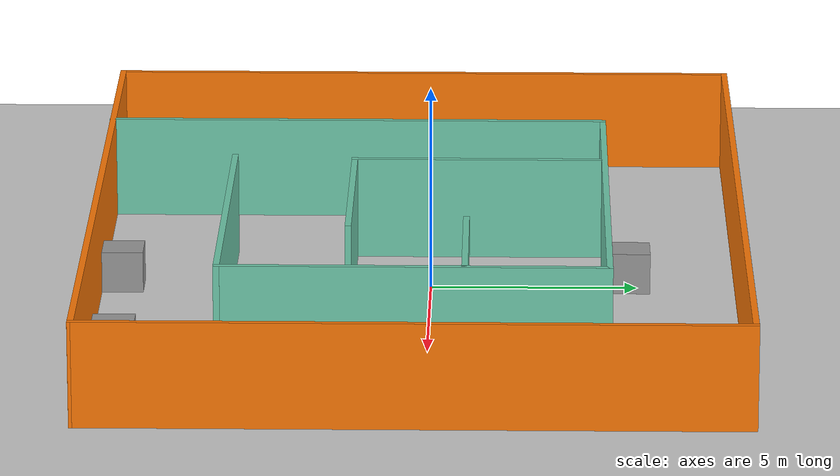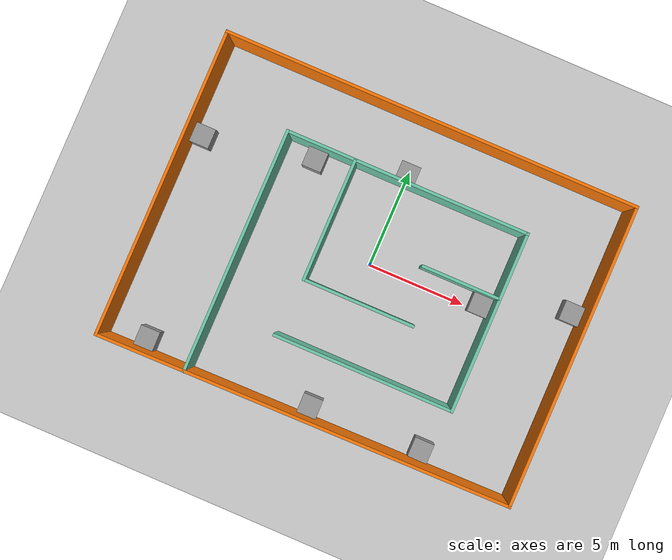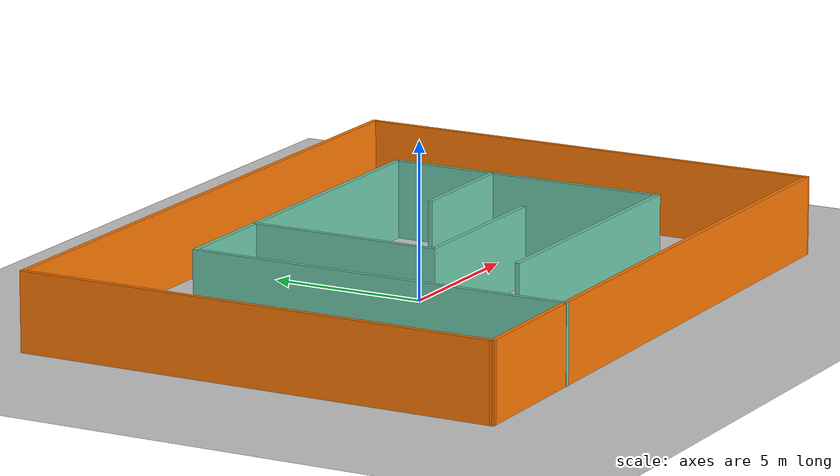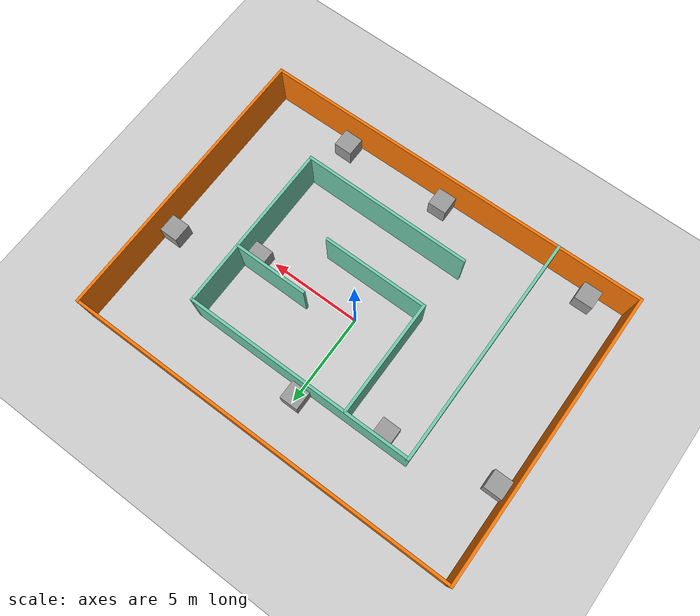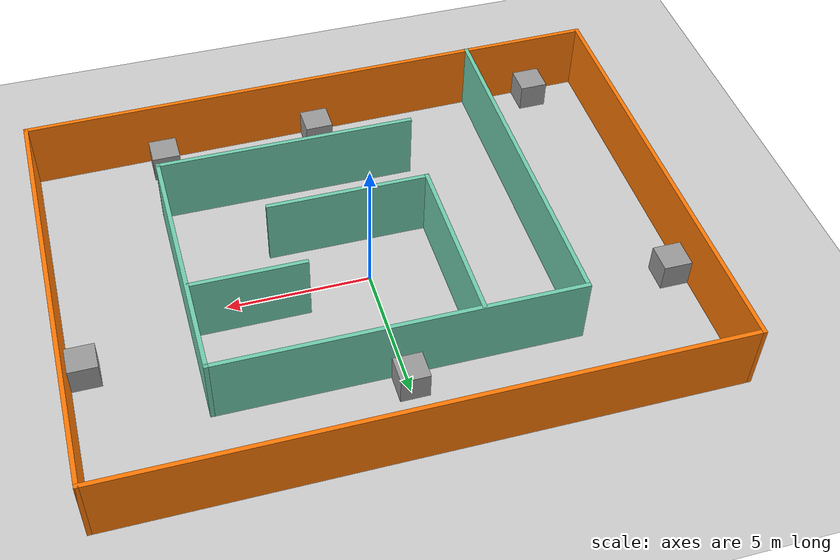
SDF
<sdf version="1.6">
 <world name="default">
  <light name="sun" type="directional">
   <pose>0 0 10 0 -0 0</pose>
   <diffuse>0.8 0.8 0.8 1</diffuse>
   <specular>0.2 0.2 0.2 1</specular>
   <attenuation>
    <range>1000</range>
    <constant>0.9</constant>
    <linear>0.01</linear>
    <quadratic>0.001</quadratic>
   </attenuation>
   <direction>-0.5 0.1 -0.9</direction>
  </light>
  <model name="ground_plane">
   <static>1</static>
   <link name="link">
    <collision name="collision">
     <geometry><plane><normal>0 0 1</normal><size>100 100</size></plane></geometry>
     <surface>
      <contact><collide_bitmask>65535</collide_bitmask></contact>
      <friction><ode><mu>100</mu><mu2>50</mu2></ode></friction>
     </surface>
    </collision>
    <visual name="visual">
     <cast_shadows>0</cast_shadows>
     <geometry><plane><normal>0 0 1</normal><size>100 100</size></plane></geometry>
     <material>
      <script><uri>file://media/materials/scripts/gazebo.material</uri><name>Gazebo/Grey</name></script>
     </material>
    </visual>
   </link>
  </model>
  <gravity>0 0 -9.8</gravity>
  <magnetic_field>6e-06 2.3e-05 -4.2e-05</magnetic_field>
  <atmosphere type="adiabatic"/>
  <physics name="default_physics" default="0" type="ode">
   <max_step_size>0.001</max_step_size>
   <real_time_factor>1</real_time_factor>
   <real_time_update_rate>1000</real_time_update_rate>
  </physics>
  <scene><ambient>0.4 0.4 0.4 1</ambient><background>0.7 0.7 0.7 1</background><shadows>1</shadows></scene>
  <spherical_coordinates>
   <surface_model>EARTH_WGS84</surface_model>
   <latitude_deg>0</latitude_deg>
   <longitude_deg>0</longitude_deg>
   <elevation>0</elevation>
   <heading_deg>0</heading_deg>
  </spherical_coordinates>
  <model name="Test_1">
   <pose>-0.0069 -0.358833 0 0 -0 0</pose>
   <link name="Wall_47">
    <collision name="Wall_47_Collision">
     <geometry><box><size>15.75 0.15 2.5</size></box></geometry>
     <pose>0 0 1.25 0 -0 0</pose>
    </collision>
    <visual name="Wall_47_Visual">
     <pose>0 0 1.25 0 -0 0</pose>
     <geometry><box><size>15.75 0.15 2.5</size></box></geometry>
     <material>
      <script><uri>file://media/materials/scripts/gazebo.material</uri><name>Gazebo/Grey</name></script>
      <ambient>0.996078 0.47451 0.0196078 1</ambient>
     </material>
     <meta><layer>0</layer></meta>
    </visual>
    <pose>-10.55 0.000441 0 0 -0 1.5708</pose>
   </link>
   <link name="Wall_48">
    <collision name="Wall_48_Collision">
     <geometry><box><size>21.25 0.15 2.5</size></box></geometry>
     <pose>0 0 1.25 0 -0 0</pose>
    </collision>
    <visual name="Wall_48_Visual">
     <pose>0 0 1.25 0 -0 0</pose>
     <geometry><box><size>21.25 0.15 2.5</size></box></geometry>
     <material>
      <script><uri>file://media/materials/scripts/gazebo.material</uri><name>Gazebo/Grey</name></script>
      <ambient>0.996078 0.47451 0.0196078 1</ambient>
     </material>
     <meta><layer>0</layer></meta>
    </visual>
    <pose>0 7.80044 0 0 -0 0</pose>
   </link>
   <link name="Wall_49">
    <collision name="Wall_49_Collision">
     <geometry><box><size>15.5 0.15 2.5</size></box></geometry>
     <pose>0 0 1.25 0 -0 0</pose>
    </collision>
    <visual name="Wall_49_Visual">
     <pose>0 0 1.25 0 -0 0</pose>
     <geometry><box><size>15.5 0.15 2.5</size></box></geometry>
     <material>
      <script><uri>file://media/materials/scripts/gazebo.material</uri><name>Gazebo/Grey</name></script>
      <ambient>0.996078 0.47451 0.0196078 1</ambient>
     </material>
     <meta><layer>0</layer></meta>
    </visual>
    <pose>10.55 0.125441 0 0 0 -1.5708</pose>
   </link>
   <link name="Wall_50">
    <collision name="Wall_50_Collision">
     <geometry><box><size>21.2515 0.15 2.5</size></box></geometry>
     <pose>0 0 1.25 0 -0 0</pose>
    </collision>
    <visual name="Wall_50_Visual">
     <pose>0 0 1.25 0 -0 0</pose>
     <geometry><box><size>21.2515 0.15 2.5</size></box></geometry>
     <material>
      <script><uri>file://media/materials/scripts/gazebo.material</uri><name>Gazebo/Grey</name></script>
      <ambient>0.996078 0.47451 0.0196078 1</ambient>
     </material>
     <meta><layer>0</layer></meta>
    </visual>
    <pose>0 -7.67456 0 0 0 -3.12975</pose>
   </link>
   <link name="Wall_55">
    <collision name="Wall_55_Collision">
     <geometry><box><size>12.5 0.15 2.5</size></box></geometry>
     <pose>0 0 1.25 0 -0 0</pose>
    </collision>
    <visual name="Wall_55_Visual">
     <pose>0 0 1.25 0 -0 0</pose>
     <geometry><box><size>12.5 0.15 2.5</size></box></geometry>
     <material>
      <script><uri>file://media/materials/scripts/gazebo.material</uri><name>Gazebo/Grey</name></script>
      <ambient>0.435294 0.796078 0.67451 1</ambient>
     </material>
     <meta><layer>0</layer></meta>
    </visual>
    <pose>-6.05158 -1.58046 0 0 -0 1.5708</pose>
   </link>
   <link name="Wall_56">
    <collision name="Wall_56_Collision">
     <geometry><box><size>12.5 0.15 2.5</size></box></geometry>
     <pose>0 0 1.25 0 -0 0</pose>
    </collision>
    <visual name="Wall_56_Visual">
     <pose>0 0 1.25 0 -0 0</pose>
     <geometry><box><size>12.5 0.15 2.5</size></box></geometry>
     <material>
      <script><uri>file://media/materials/scripts/gazebo.material</uri><name>Gazebo/Grey</name></script>
      <ambient>0.435294 0.796078 0.67451 1</ambient>
     </material>
     <meta><layer>0</layer></meta>
    </visual>
    <pose>0.123417 4.59454 0 0 -0 0</pose>
   </link>
   <link name="Wall_57">
    <collision name="Wall_57_Collision">
     <geometry><box><size>9.25 0.15 2.5</size></box></geometry>
     <pose>0 0 1.25 0 -0 0</pose>
    </collision>
    <visual name="Wall_57_Visual">
     <pose>0 0 1.25 0 -0 0</pose>
     <geometry><box><size>9.25 0.15 2.5</size></box></geometry>
     <material>
      <script><uri>file://media/materials/scripts/gazebo.material</uri><name>Gazebo/Grey</name></script>
      <ambient>0.435294 0.796078 0.67451 1</ambient>
     </material>
     <meta><layer>0</layer></meta>
    </visual>
    <pose>6.29842 0.044543 0 0 0 -1.5708</pose>
   </link>
   <link name="Wall_58">
    <collision name="Wall_58_Collision">
     <geometry><box><size>9.25 0.15 2.5</size></box></geometry>
     <pose>0 0 1.25 0 -0 0</pose>
    </collision>
    <visual name="Wall_58_Visual">
     <pose>0 0 1.25 0 -0 0</pose>
     <geometry><box><size>9.25 0.15 2.5</size></box></geometry>
     <material>
      <script><uri>file://media/materials/scripts/gazebo.material</uri><name>Gazebo/Grey</name></script>
      <ambient>0.435294 0.796078 0.67451 1</ambient>
     </material>
     <meta><layer>0</layer></meta>
    </visual>
    <pose>1.74842 -4.50546 0 0 -0 3.14159</pose>
   </link>
   <link name="Wall_60">
    <collision name="Wall_60_Collision">
     <geometry><box><size>6.25 0.15 2.5</size></box></geometry>
     <pose>0 0 1.25 0 -0 0</pose>
    </collision>
    <visual name="Wall_60_Visual">
     <pose>0 0 1.25 0 -0 0</pose>
     <geometry><box><size>6.25 0.15 2.5</size></box></geometry>
     <material>
      <script><uri>file://media/materials/scripts/gazebo.material</uri><name>Gazebo/Grey</name></script>
      <ambient>0.435294 0.796078 0.67451 1</ambient>
     </material>
     <meta><layer>0</layer></meta>
    </visual>
    <pose>-2.56752 1.49904 0 0 0 -1.5708</pose>
   </link>
   <link name="Wall_61">
    <collision name="Wall_61_Collision">
     <geometry><box><size>5.75 0.15 2.5</size></box></geometry>
     <pose>0 0 1.25 0 -0 0</pose>
    </collision>
    <visual name="Wall_61_Visual">
     <pose>0 0 1.25 0 -0 0</pose>
     <geometry><box><size>5.75 0.15 2.5</size></box></geometry>
     <material>
      <script><uri>file://media/materials/scripts/gazebo.material</uri><name>Gazebo/Grey</name></script>
      <ambient>0.435294 0.796078 0.67451 1</ambient>
     </material>
     <meta><layer>0</layer></meta>
    </visual>
    <pose>0.232485 -1.55096 0 0 -0 0</pose>
   </link>
   <link name="Wall_63">
    <collision name="Wall_63_Collision">
     <geometry><box><size>4 0.15 2.5</size></box></geometry>
     <pose>0 0 1.25 0 -0 0</pose>
    </collision>
    <visual name="Wall_63_Visual">
     <pose>0 0 1.25 0 -0 0</pose>
     <geometry><box><size>4 0.15 2.5</size></box></geometry>
     <material>
      <script><uri>file://media/materials/scripts/gazebo.material</uri><name>Gazebo/Grey</name></script>
      <ambient>0.435294 0.796078 0.67451 1</ambient>
     </material>
     <meta><layer>0</layer></meta>
    </visual>
    <pose>4.29692 1.24138 0 0 -0 0</pose>
   </link>
   <static>1</static>
  </model>
  <model name="unit_box">
   <pose>-4.48175 3.66071 0.5 0 -0 0</pose>
   <link name="link">
    <inertial>
     <mass>1</mass>
     <inertia>
      <ixx>0.166667</ixx>
      <ixy>0</ixy>
      <ixz>0</ixz>
      <iyy>0.166667</iyy>
      <iyz>0</iyz>
      <izz>0.166667</izz>
     </inertia>
    </inertial>
    <collision name="collision"><geometry><box><size>1 1 1</size></box></geometry></collision>
    <visual name="visual">
     <geometry><box><size>1 1 1</size></box></geometry>
     <material>
      <script><name>Gazebo/Grey</name><uri>file://media/materials/scripts/gazebo.material</uri></script>
     </material>
    </visual>
   </link>
  </model>
  <model name="unit_box_0">
   <pose>-8.53917 -7.55937 0.499995 0 -1e-05 0.011838</pose>
   <link name="link">
    <inertial>
     <mass>1</mass>
     <inertia>
      <ixx>0.166667</ixx>
      <ixy>0</ixy>
      <ixz>0</ixz>
      <iyy>0.166667</iyy>
      <iyz>0</iyz>
      <izz>0.166667</izz>
     </inertia>
    </inertial>
    <collision name="collision"><geometry><box><size>1 1 1</size></box></geometry></collision>
    <visual name="visual">
     <geometry><box><size>1 1 1</size></box></geometry>
     <material>
      <script><name>Gazebo/Grey</name><uri>file://media/materials/scripts/gazebo.material</uri></script>
     </material>
    </visual>
   </link>
  </model>
  <model name="unit_box_1">
   <pose>9.9681 1.69311 0.5 0 0 -1e-05</pose>
   <link name="link">
    <inertial>
     <mass>1</mass>
     <inertia>
      <ixx>0.166667</ixx>
      <ixy>0</ixy>
      <ixz>0</ixz>
      <iyy>0.166667</iyy>
      <iyz>0</iyz>
      <izz>0.166667</izz>
     </inertia>
    </inertial>
    <collision name="collision"><geometry><box><size>1 1 1</size></box></geometry></collision>
    <visual name="visual">
     <geometry><box><size>1 1 1</size></box></geometry>
     <material>
      <script><name>Gazebo/Grey</name><uri>file://media/materials/scripts/gazebo.material</uri></script>
     </material>
    </visual>
   </link>
  </model>
  <model name="unit_box_2">
   <pose>0.038513 -7.45778 0.499995 1e-05 -0 0.011838</pose>
   <link name="link">
    <inertial>
     <mass>1</mass>
     <inertia>
      <ixx>0.166667</ixx>
      <ixy>0</ixy>
      <ixz>0</ixz>
      <iyy>0.166667</iyy>
      <iyz>0</iyz>
      <izz>0.166667</izz>
     </inertia>
    </inertial>
    <collision name="collision"><geometry><box><size>1 1 1</size></box></geometry></collision>
    <visual name="visual">
     <geometry><box><size>1 1 1</size></box></geometry>
     <material>
      <script><name>Gazebo/Grey</name><uri>file://media/materials/scripts/gazebo.material</uri></script>
     </material>
    </visual>
   </link>
  </model>
  <model name="unit_box_3">
   <pose>5.83908 -7.30351 0.499995 -1e-05 0 0</pose>
   <link name="link">
    <inertial>
     <mass>1</mass>
     <inertia>
      <ixx>0.166667</ixx>
      <ixy>0</ixy>
      <ixz>0</ixz>
      <iyy>0.166667</iyy>
      <iyz>0</iyz>
      <izz>0.166667</izz>
     </inertia>
    </inertial>
    <collision name="collision"><geometry><box><size>1 1 1</size></box></geometry></collision>
    <visual name="visual">
     <geometry><box><size>1 1 1</size></box></geometry>
     <material>
      <script><name>Gazebo/Grey</name><uri>file://media/materials/scripts/gazebo.material</uri></script>
     </material>
    </visual>
   </link>
  </model>
  <model name="unit_box_4">
   <pose>5.71483 0.307133 0.499995 0 1e-05 0.000748</pose>
   <link name="link">
    <inertial>
     <mass>1</mass>
     <inertia>
      <ixx>0.166667</ixx>
      <ixy>0</ixy>
      <ixz>0</ixz>
      <iyy>0.166667</iyy>
      <iyz>0</iyz>
      <izz>0.166667</izz>
     </inertia>
    </inertial>
    <collision name="collision"><geometry><box><size>1 1 1</size></box></geometry></collision>
    <visual name="visual">
     <geometry><box><size>1 1 1</size></box></geometry>
     <material>
      <script><name>Gazebo/Grey</name><uri>file://media/materials/scripts/gazebo.material</uri></script>
     </material>
    </visual>
   </link>
  </model>
  <model name="unit_box_5">
   <pose>-9.98191 2.56682 0.5 0 0 -1e-06</pose>
   <link name="link">
    <inertial>
     <mass>1</mass>
     <inertia>
      <ixx>0.166667</ixx>
      <ixy>0</ixy>
      <ixz>0</ixz>
      <iyy>0.166667</iyy>
      <iyz>0</iyz>
      <izz>0.166667</izz>
     </inertia>
    </inertial>
    <collision name="collision"><geometry><box><size>1 1 1</size></box></geometry></collision>
    <visual name="visual">
     <geometry><box><size>1 1 1</size></box></geometry>
     <material>
      <script><name>Gazebo/Grey</name><uri>file://media/materials/scripts/gazebo.material</uri></script>
     </material>
    </visual>
   </link>
  </model>
  <model name="unit_box_6">
   <pose>-0.048399 4.81071 0.499995 0 1e-05 0</pose>
   <link name="link">
    <inertial>
     <mass>1</mass>
     <inertia>
      <ixx>0.166667</ixx>
      <ixy>0</ixy>
      <ixz>0</ixz>
      <iyy>0.166667</iyy>
      <iyz>0</iyz>
      <izz>0.166667</izz>
     </inertia>
    </inertial>
    <collision name="collision"><geometry><box><size>1 1 1</size></box></geometry></collision>
    <visual name="visual">
     <geometry><box><size>1 1 1</size></box></geometry>
     <material>
      <script><name>Gazebo/Grey</name><uri>file://media/materials/scripts/gazebo.material</uri></script>
     </material>
    </visual>
   </link>
  </model>
  <plugin filename="libcollision_map_creator.so" name="collision_map_creator"/>
 </world>
</sdf>
